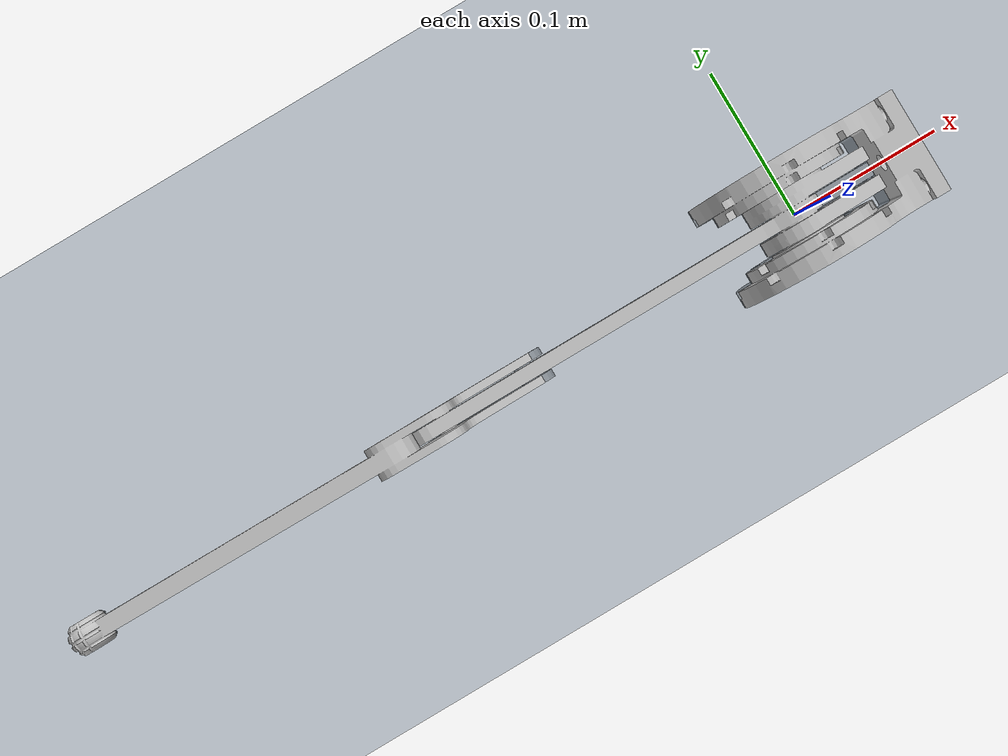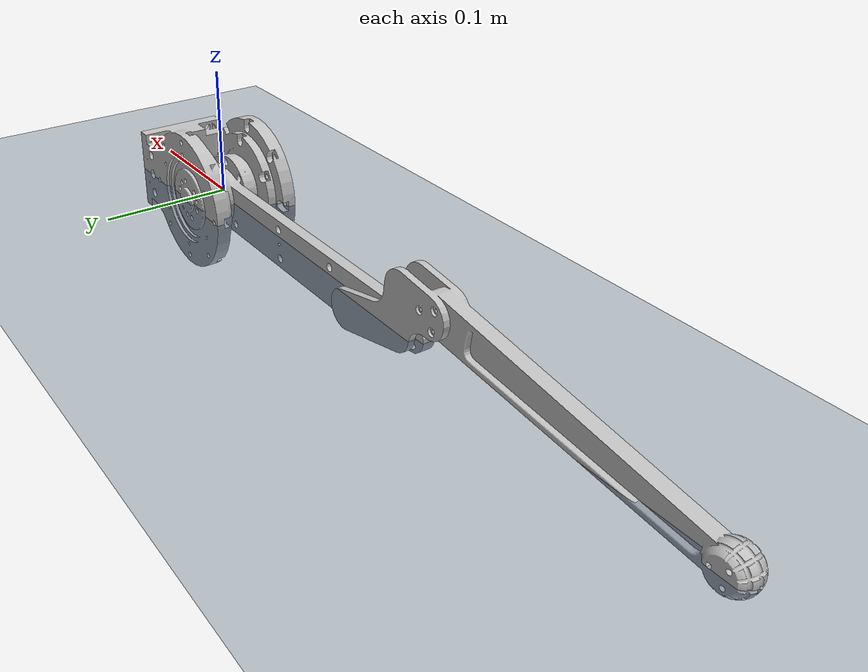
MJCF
<mujoco model="scene">

  <include file="one_leg_model_z.xml"/>

  <statistic center="0 0 0.1" extent="0.8"/>

  <asset>
    <texture type="skybox" builtin="gradient" rgb1="0.3 0.5 0.7" rgb2="0 0 0" width="512" height="3072"/>
    <texture type="2d" name="groundplane" builtin="checker" mark="edge" rgb1="0.2 0.3 0.4" rgb2="0.1 0.2 0.3"
      markrgb="0.8 0.8 0.8" width="300" height="300"/>
    <material name="groundplane" texture="groundplane" texuniform="true" texrepeat="5 5" reflectance="0.2"/>
  </asset>

  <worldbody>
    <light pos="0 0 1.5" dir="0 0 -1" directional="true"/>
    <geom name="floor" size="0 0 0.05" type="plane" material="groundplane"/>
        <!-- Little box added -->
  </worldbody>

</mujoco>

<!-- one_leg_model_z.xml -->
<mujoco model="one_leg_mujoco.SLDASM">
  <compiler angle="radian"/>
	<option timestep="0.001" integrator="RK4" gravity = "0 0 -9.81" cone="elliptic" impratio="100" />

  <asset>
    <mesh name="base_link" file="base_link.STL"/>
    <mesh name="link1"     file="link1.STL"/>
    <mesh name="link2"     file="link2.STL"/>
  </asset>

  <!-- 링크들끼리만 충돌 제외 (ground와는 충돌 허용) -->

  <worldbody>
    <!-- 바닥 -->

    <!-- 베이스: z축 슬라이드(수직 이동만) -->
    <body name="base_link" pos="0 0 0">
      <joint name="z_base" type="slide" axis="0 0 1"
             limited="true" range="0.0 1000.0" damping="0.1"/>
      <inertial pos="0 0 0" mass="2.0"
                diaginertia="0.02 0.02 0.01"/>

      <geom type="mesh" mesh="base_link" rgba="0.75 0.75 0.75 1"/>

      <!-- link1 (hip) -->
      <body name="link1">
        <inertial pos="-0.03933 0.000054848 -0.0046776"
                  quat="-0.000931991 0.705259 -0.00147268 0.708948"
                  mass="0.76733"
                  diaginertia="0.00540914 0.005403 0.000231856"/>
        <joint name="q1" type="hinge" pos="0 0 0" axis="0 -1 0"
               limited="true" range="-1.57 1.57" damping="0.1"/>
        <geom type="mesh" mesh="link1" rgba="0.75 0.75 0.75 1"/>

        <!-- link2 (knee) -->
        <body name="link2" pos="-0.25 0 0">
          <inertial pos="-0.069451 0.000045096 0.0097666"
                    quat="0.501427 0.498766 0.498614 0.501186"
                    mass="0.25696"
                    diaginertia="0.002621 0.00256207 0.0000779316"/>
          <joint name="q2" type="hinge" pos="0 0 0" axis="0 -1 0"
                 limited="true" range="0 3.14" damping="0.1"/>
          <geom name="link2_mesh" type="mesh" mesh="link2" rgba="0.75 0.75 0.75 1"
                friction="1.5 0.01 0.002"/>

          <site type="sphere" name="foot" pos="-0.25 0 0" size="0.03" rgba="1 0 0 0"/>

        </body>
      </body>
    </body>
  </worldbody>

  <!-- q1, q2 토크 모터 (d->ctrl[0], d->ctrl[1]과 매핑) -->
  <actuator>
    <motor name="motor_q1" joint="q1" gear="1"
           ctrllimited="true" ctrlrange="-100 100" forcerange="-150 150"/>
    <motor name="motor_q2" joint="q2" gear="1"
           ctrllimited="true" ctrlrange="-100 100" forcerange="-150 150"/>
  </actuator>

  <sensor>
      <force name="grf_sensor" site="foot" />
      <touch name="touch_sensor" site="foot" />
      <framepos   name="foot_pos"  objtype="site" objname="foot" />
      <framelinvel name="foot_vel" objtype="site" objname="foot" />

  </sensor>

</mujoco>
